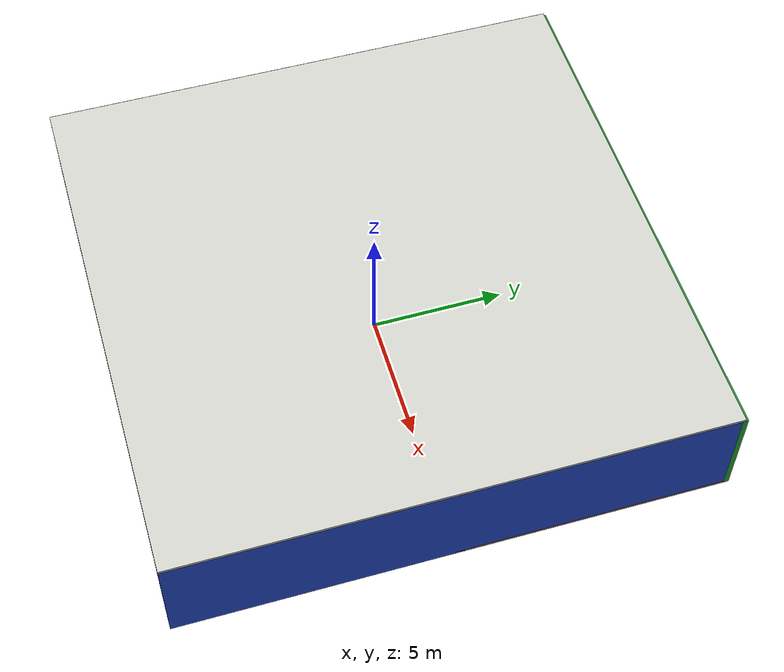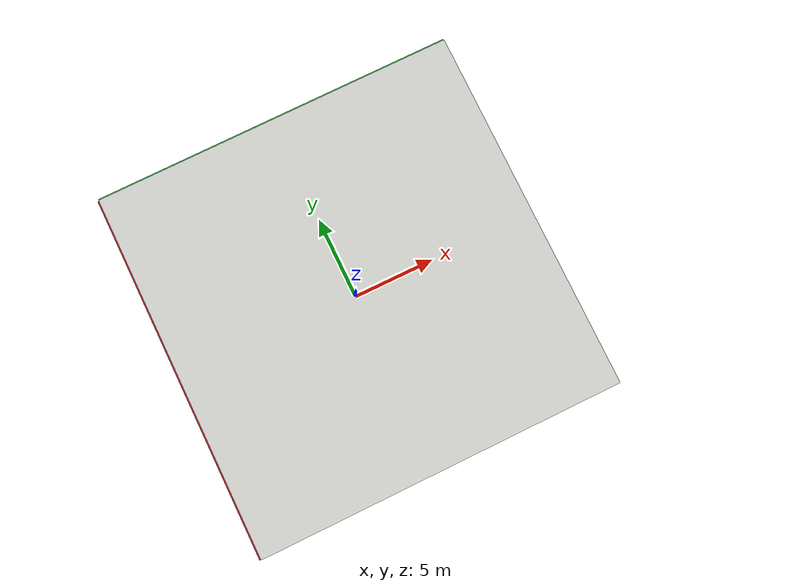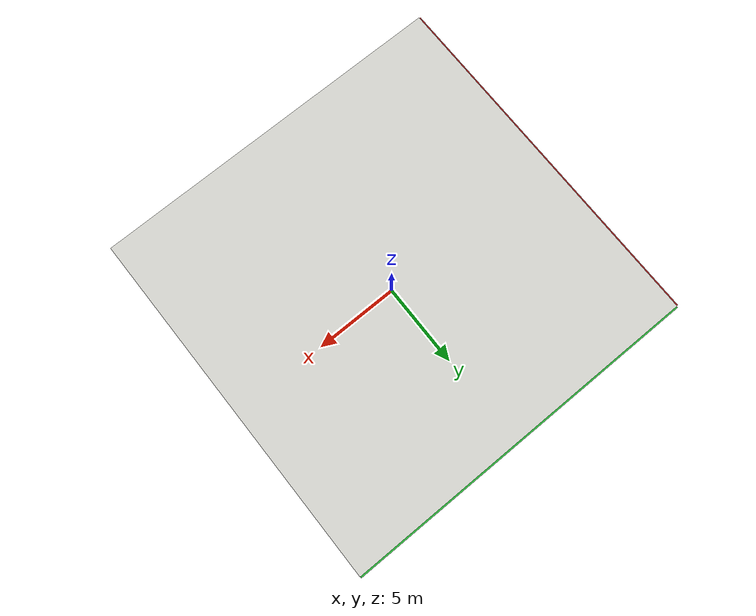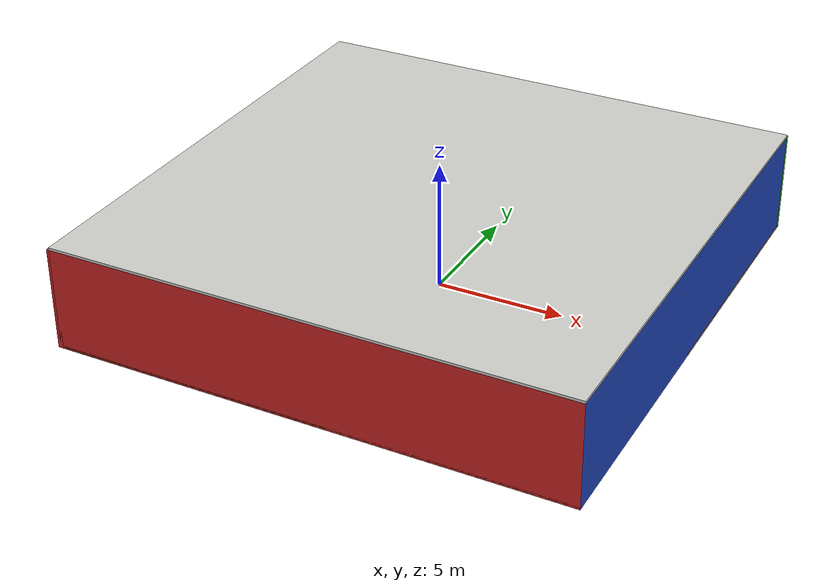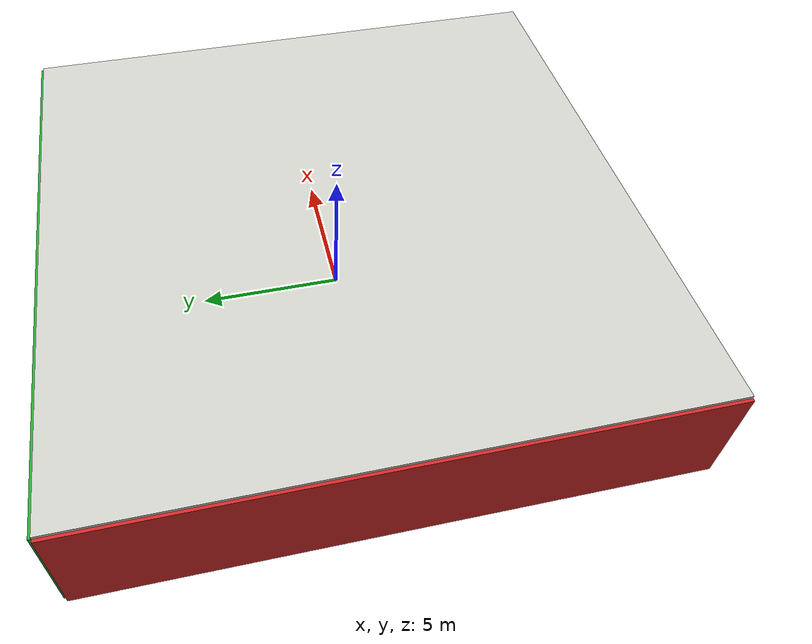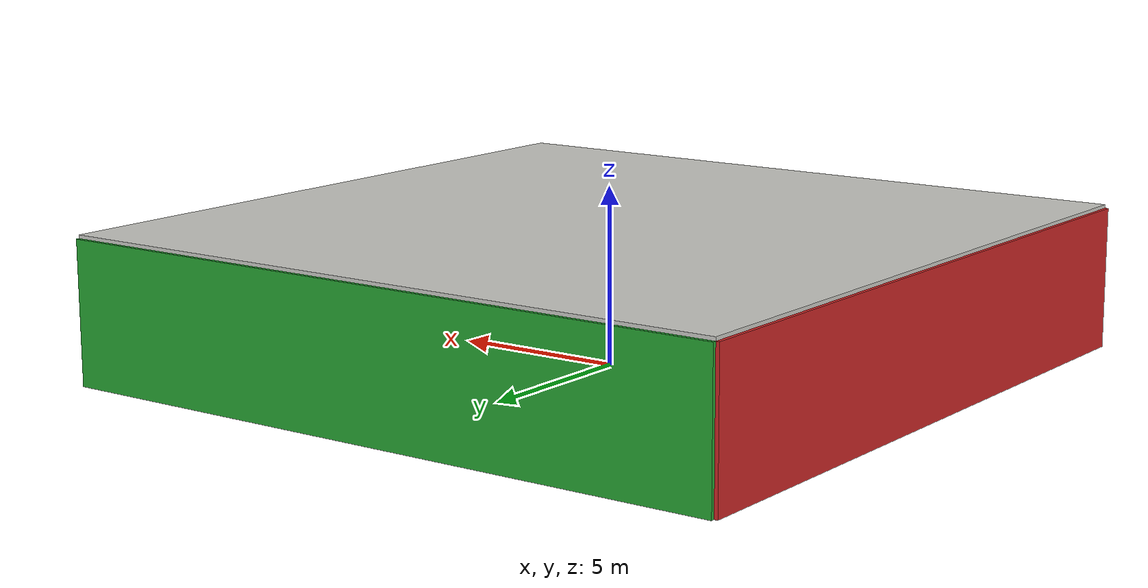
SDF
<sdf version="1.4">
 <world name="default">
  <physics type="ode">
   <max_step_size>0.001</max_step_size>
   <real_time_factor>1</real_time_factor>
   <real_time_update_rate>1000</real_time_update_rate>
   <gravity>0 0 -9.8</gravity>
  </physics>
  <scene><ambient>0.4 0.4 0.4 1</ambient><background>0.7 0.7 0.7 1</background><shadows>1</shadows></scene>
  <model name="Surrounding">
   <static>1</static>
   <link name="Ceiling">
    <collision name="Ceiling_Collision"><geometry><box><size>20 20 0.1</size></box></geometry></collision>
    <visual name="Ceiling_Visual">
     <geometry><box><size>20 20 0.1</size></box></geometry>
     <material>
      <script><uri>file://media/materials/scripts/gazebo.material</uri><name>Gazebo/CeilingTiled</name></script>
     </material>
    </visual>
    <pose>0 0 4.05 0 0 0</pose>
   </link>
   <link name="Wall_South">
    <collision name="Wall_South_Collision">
     <geometry><box><size>20 0 4</size></box></geometry>
     <pose>0 0 2 0 -0 0</pose>
    </collision>
    <visual name="Wall_South_Visual">
     <pose>0 0 2 0 -0 0</pose>
     <geometry><box><size>20 0 4</size></box></geometry>
     <material>
      <script><uri>file://media/materials/scripts/gazebo.material</uri><name>Gazebo/RedGlow</name></script>
     </material>
    </visual>
    <velocity_decay><linear>0</linear><angular>0</angular></velocity_decay>
    <pose>0 -10 0 0 -0 0</pose>
   </link>
   <link name="Wall_East">
    <collision name="Wall_21_Collision">
     <geometry><box><size>20 0 4</size></box></geometry>
     <pose>0 0 2 0 -0 0</pose>
    </collision>
    <visual name="Wall_21_Visual">
     <pose>0 0 2 0 -0 0</pose>
     <geometry><box><size>20 0 4</size></box></geometry>
     <material>
      <script><uri>file://media/materials/scripts/gazebo.material</uri><name>Gazebo/BlueLaser</name></script>
     </material>
    </visual>
    <velocity_decay><linear>0</linear><angular>0</angular></velocity_decay>
    <pose>10 0 0 0 -0 1.5708</pose>
   </link>
   <link name="Wall_North">
    <collision name="Wall_22_Collision">
     <geometry><box><size>20 0.2 4</size></box></geometry>
     <pose>0 0 2 0 -0 0</pose>
    </collision>
    <visual name="Wall_22_Visual">
     <pose>0 0 2 0 -0 0</pose>
     <geometry><box><size>20 0.2 4</size></box></geometry>
     <material>
      <script><uri>file://media/materials/scripts/gazebo.material</uri><name>Gazebo/GreenGlow</name></script>
     </material>
    </visual>
    <velocity_decay><linear>0</linear><angular>0</angular></velocity_decay>
    <pose>0 10 0 0 -0 0</pose>
   </link>
   <link name="Wall_West">
    <collision name="Wall_23_Collision">
     <geometry><box><size>20 0.2 4</size></box></geometry>
     <pose>0 0 2 0 -0 0</pose>
    </collision>
    <visual name="Wall_23_Visual">
     <pose>0 0 2 0 -0 0</pose>
     <geometry><box><size>20 0.2 4</size></box></geometry>
     <material>
      <script><uri>file://media/materials/scripts/gazebo.material</uri><name>Gazebo/Red</name></script>
     </material>
    </visual>
    <velocity_decay><linear>0</linear><angular>0</angular></velocity_decay>
    <pose>-10 0 0 0 0 -1.5708</pose>
   </link>
   <link name="Ground_link">
    <collision name="collision">
     <pose>0 0 .05 0 -0 0</pose>
     <geometry><box><size>20 20 0.1</size></box></geometry>
    </collision>
    <visual name="visual">
     <pose>0 0 .05 0 -0 0</pose>
     <geometry><box><size>20 20 0.1</size></box></geometry>
     <material>
      <script>
       <uri>file://media/materials/scripts/gazebo.material</uri>
       <name>Gazebo/OrangeTransparent</name>
      </script>
     </material>
    </visual>
   </link>
   <static>1</static>
  </model>
  <spherical_coordinates>
   <surface_model>EARTH_WGS84</surface_model>
   <latitude_deg>0</latitude_deg>
   <longitude_deg>0</longitude_deg>
   <elevation>0</elevation>
   <heading_deg>0</heading_deg>
  </spherical_coordinates>
  <light name="lightball_0" type="diffuse">
   <diffuse>0.8 0.8 0.8 1</diffuse>
   <specular>0.2 0.2 0.2 1</specular>
   <attenuation>
    <range>100</range>
    <constant>0.7</constant>
    <linear>0.01</linear>
    <quadratic>0.001</quadratic>
   </attenuation>
   <direction>-0.5 0.1 -0.9</direction>
   <pose>-9.34891689952 1.96879702491 1.36630239621 0 0 0</pose>
  </light>
  <light name="lightball_1" type="diffuse">
   <diffuse>0.8 0.8 0.8 1</diffuse>
   <specular>0.2 0.2 0.2 1</specular>
   <attenuation>
    <range>100</range>
    <constant>0.7</constant>
    <linear>0.01</linear>
    <quadratic>0.001</quadratic>
   </attenuation>
   <direction>-0.5 0.1 -0.9</direction>
   <pose>-8.64686568017 -2.41611712836 1.41122255703 0 0 0</pose>
  </light>
  <light name="lightball_2" type="diffuse">
   <diffuse>0.8 0.8 0.8 1</diffuse>
   <specular>0.2 0.2 0.2 1</specular>
   <attenuation>
    <range>100</range>
    <constant>0.7</constant>
    <linear>0.01</linear>
    <quadratic>0.001</quadratic>
   </attenuation>
   <direction>-0.5 0.1 -0.9</direction>
   <pose>-3.02196445122 9.21918295035 2.79826281859 0 0 0</pose>
  </light>
  <light name="lightball_3" type="diffuse">
   <diffuse>0.8 0.8 0.8 1</diffuse>
   <specular>0.2 0.2 0.2 1</specular>
   <attenuation>
    <range>100</range>
    <constant>0.7</constant>
    <linear>0.01</linear>
    <quadratic>0.001</quadratic>
   </attenuation>
   <direction>-0.5 0.1 -0.9</direction>
   <pose>-5.54785937497 9.57262758138 3.60405434242 0 0 0</pose>
  </light>
  <light name="lightball_4" type="diffuse">
   <diffuse>0.8 0.8 0.8 1</diffuse>
   <specular>0.2 0.2 0.2 1</specular>
   <attenuation>
    <range>100</range>
    <constant>0.7</constant>
    <linear>0.01</linear>
    <quadratic>0.001</quadratic>
   </attenuation>
   <direction>-0.5 0.1 -0.9</direction>
   <pose>-5.9398820516 9.94220392575 2.31580312004 0 0 0</pose>
  </light>
  <light name="lightball_5" type="diffuse">
   <diffuse>0.8 0.8 0.8 1</diffuse>
   <specular>0.2 0.2 0.2 1</specular>
   <attenuation>
    <range>100</range>
    <constant>0.7</constant>
    <linear>0.01</linear>
    <quadratic>0.001</quadratic>
   </attenuation>
   <direction>-0.5 0.1 -0.9</direction>
   <pose>4.58360259419 -9.25324993714 3.26059116302 0 0 0</pose>
  </light>
  <light name="lightball_6" type="diffuse">
   <diffuse>0.8 0.8 0.8 1</diffuse>
   <specular>0.2 0.2 0.2 1</specular>
   <attenuation>
    <range>100</range>
    <constant>0.7</constant>
    <linear>0.01</linear>
    <quadratic>0.001</quadratic>
   </attenuation>
   <direction>-0.5 0.1 -0.9</direction>
   <pose>-3.78575893224 7.16807450242 1.2008038538 0 0 0</pose>
  </light>
  <light name="lightball_7" type="diffuse">
   <diffuse>0.8 0.8 0.8 1</diffuse>
   <specular>0.2 0.2 0.2 1</specular>
   <attenuation>
    <range>100</range>
    <constant>0.7</constant>
    <linear>0.01</linear>
    <quadratic>0.001</quadratic>
   </attenuation>
   <direction>-0.5 0.1 -0.9</direction>
   <pose>-4.51669596706 2.68712887742 2.0578271152 0 0 0</pose>
  </light>
  <light name="lightball_8" type="diffuse">
   <diffuse>0.8 0.8 0.8 1</diffuse>
   <specular>0.2 0.2 0.2 1</specular>
   <attenuation>
    <range>100</range>
    <constant>0.7</constant>
    <linear>0.01</linear>
    <quadratic>0.001</quadratic>
   </attenuation>
   <direction>-0.5 0.1 -0.9</direction>
   <pose>-0.736665633333 -9.42900689404 1.09923140461 0 0 0</pose>
  </light>
  <light name="lightball_9" type="diffuse">
   <diffuse>0.8 0.8 0.8 1</diffuse>
   <specular>0.2 0.2 0.2 1</specular>
   <attenuation>
    <range>100</range>
    <constant>0.7</constant>
    <linear>0.01</linear>
    <quadratic>0.001</quadratic>
   </attenuation>
   <direction>-0.5 0.1 -0.9</direction>
   <pose>-1.61541854248 -7.67597381162 3.4658552951 0 0 0</pose>
  </light>
  <light name="lightball_10" type="diffuse">
   <diffuse>0.8 0.8 0.8 1</diffuse>
   <specular>0.2 0.2 0.2 1</specular>
   <attenuation>
    <range>100</range>
    <constant>0.7</constant>
    <linear>0.01</linear>
    <quadratic>0.001</quadratic>
   </attenuation>
   <direction>-0.5 0.1 -0.9</direction>
   <pose>-2.83019822878 8.85595895413 3.0767141477 0 0 0</pose>
  </light>
  <light name="lightball_11" type="diffuse">
   <diffuse>0.8 0.8 0.8 1</diffuse>
   <specular>0.2 0.2 0.2 1</specular>
   <attenuation>
    <range>100</range>
    <constant>0.7</constant>
    <linear>0.01</linear>
    <quadratic>0.001</quadratic>
   </attenuation>
   <direction>-0.5 0.1 -0.9</direction>
   <pose>9.45886521016 -8.07076739967 0.744737019628 0 0 0</pose>
  </light>
  <light name="lightball_12" type="diffuse">
   <diffuse>0.8 0.8 0.8 1</diffuse>
   <specular>0.2 0.2 0.2 1</specular>
   <attenuation>
    <range>100</range>
    <constant>0.7</constant>
    <linear>0.01</linear>
    <quadratic>0.001</quadratic>
   </attenuation>
   <direction>-0.5 0.1 -0.9</direction>
   <pose>7.87094513986 -7.55269474213 1.75486492622 0 0 0</pose>
  </light>
  <light name="lightball_13" type="diffuse">
   <diffuse>0.8 0.8 0.8 1</diffuse>
   <specular>0.2 0.2 0.2 1</specular>
   <attenuation>
    <range>100</range>
    <constant>0.7</constant>
    <linear>0.01</linear>
    <quadratic>0.001</quadratic>
   </attenuation>
   <direction>-0.5 0.1 -0.9</direction>
   <pose>9.65784947888 -1.91994506569 3.83723637251 0 0 0</pose>
  </light>
  <include><uri>model://cabinet</uri><pose>-5.08625305777 7.2249961794 0 0 0 1.96555388009</pose></include>
  <include><uri>model://cabinet</uri><pose>-1.69669761695 3.760036971 0 0 0 1.895194644</pose></include>
  <include><uri>model://cabinet</uri><pose>1.77019743502 -8.02485983162 0 0 0 2.67924228663</pose></include>
  <include><uri>model://table</uri><pose>4.49203996709 -2.09764604286 0 0 0 2.97920460013</pose></include>
 </world>
</sdf>

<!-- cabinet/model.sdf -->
<sdf version="1.5">
  <model name="cabinet">
    <static>true</static>
    <link name="cabinet_bottom_plate">
      <inertial>
        <pose>0 0 -1 0 0 0</pose>
        <inertia>
          <ixx>2.050000</ixx>
          <ixy>0</ixy>
          <ixz>0</ixz>
          <iyy>2.050000</iyy>
          <iyz>0</iyz>
          <izz>2.050000</izz>
        </inertia>
        <mass>25.000000</mass>
      </inertial>
      <collision name="cabinet_bottom_plate_geom">
        <pose>0 0 0.010000 0 0 0</pose>
        <geometry>
          <box>
            <size>0.450000 0.450000 0.020000</size>
          </box>
        </geometry>
      </collision>
      <visual name="cabinet_bottom_plate_geom_visual">
        <pose>0 0 0.010000 0 0 0</pose>
        <geometry>
          <box>
            <size>0.450000 0.450000 0.020000</size>
          </box>
        </geometry>
        <material>
          <script>
            <uri>model://media/materials/scripts/gazebo.material</uri>
            <name>Gazebo/Wood</name>
          </script>
        </material>
      </visual>
      <collision name="cabinet_bottom_plate_geom_cabinet_back_plate">
        <pose>0.235000 0 0.510000 0 0 0</pose>
        <geometry>
          <box>
            <size>0.020000 0.450000 1.020000</size>
          </box>
        </geometry>
      </collision>
      <visual name="cabinet_bottom_plate_geom_cabinet_back_plate_visual">
        <pose>0.235000 0 0.510000 0 0 0</pose>
        <geometry>
          <box>
            <size>0.020000 0.450000 1.020000</size>
          </box>
        </geometry>
        <material>
          <script>
            <uri>model://media/materials/scripts/gazebo.material</uri>
            <name>Gazebo/Wood</name>
          </script>
        </material>
      </visual>
      <collision name="cabinet_bottom_plate_geom_cabinet_left_plate">
        <pose>0 0.235000 0.510000 0 0 0</pose>
        <geometry>
          <box>
            <size>0.450000 0.020000 1.020000</size>
          </box>
        </geometry>
      </collision>
      <visual name="cabinet_bottom_plate_geom_cabinet_left_plate_visual">
        <pose>0 0.235000 0.510000 0 0 0</pose>
        <geometry>
          <box>
            <size>0.450000 0.020000 1.020000</size>
          </box>
        </geometry>
        <material>
          <script>
            <uri>model://media/materials/scripts/gazebo.material</uri>
            <name>Gazebo/Wood</name>
          </script>
        </material>
      </visual>
      <collision name="cabinet_bottom_plate_geom_cabinet_middle_plate">
        <pose>0 0 0.510000 0 0 0</pose>
        <geometry>
          <box>
            <size>0.450000 0.450000 0.020000</size>
          </box>
        </geometry>
      </collision>
      <visual name="cabinet_bottom_plate_geom_cabinet_middle_plate_visual">
        <pose>0 0 0.510000 0 0 0</pose>
        <geometry>
          <box>
            <size>0.450000 0.450000 0.020000</size>
          </box>
        </geometry>
        <material>
          <script>
            <uri>model://media/materials/scripts/gazebo.material</uri>
            <name>Gazebo/Wood</name>
          </script>
        </material>
      </visual>
      <collision name="cabinet_bottom_plate_geom_cabinet_right_plate">
        <pose>0 -0.235000 0.510000 0 0 0</pose>
        <geometry>
          <box>
            <size>0.450000 0.020000 1.020000</size>
          </box>
        </geometry>
      </collision>
      <visual name="cabinet_bottom_plate_geom_cabinet_right_plate_visual">
        <pose>0 -0.235000 0.510000 0 0 0</pose>
        <geometry>
          <box>
            <size>0.450000 0.020000 1.020000</size>
          </box>
        </geometry>
        <material>
          <script>
            <uri>model://media/materials/scripts/gazebo.material</uri>
            <name>Gazebo/Wood</name>
          </script>
        </material>
      </visual>
      <collision name="cabinet_bottom_plate_geom_cabinet_top_plate">
        <pose>0 0 1.010000 0 0 0</pose>
        <geometry>
          <box>
            <size>0.450000 0.450000 0.020000</size>
          </box>
        </geometry>
      </collision>
      <visual name="cabinet_bottom_plate_geom_cabinet_top_plate_visual">
        <pose>0 0 1.010000 0 0 0</pose>
        <geometry>
          <box>
            <size>0.450000 0.450000 0.020000</size>
          </box>
        </geometry>
        <material>
          <script>
            <uri>model://media/materials/scripts/gazebo.material</uri>
            <name>Gazebo/Wood</name>
          </script>
        </material>
      </visual>
    </link>
  </model>
</sdf>

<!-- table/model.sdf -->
<sdf version="1.5">
  <model name="table">
    <static>true</static>
    <link name="link">
      <collision name="surface">
        <pose>0 0 1.0 0 0 0</pose>
        <geometry>
          <box>
            <size>1.5 0.8 0.03</size>
          </box>
        </geometry>
        <surface>
          <friction>
            <ode>
              <mu>0.6</mu>
              <mu2>0.6</mu2>
            </ode>
          </friction>
        </surface>
      </collision>
      <visual name="visual1">
        <pose>0 0 1.0 0 0 0</pose>
        <geometry>
          <box>
            <size>1.5 0.8 0.03</size>
          </box>
        </geometry>
        <material>
          <script>
            <uri>model://media/materials/scripts/gazebo.material</uri>
            <name>Gazebo/Wood</name>
          </script>
        </material>
      </visual>
      <collision name="front_left_leg">
        <pose>0.68 0.38 0.5 0 0 0</pose>
        <geometry>
          <cylinder>
            <radius>0.02</radius>
            <length>1.0</length>
          </cylinder>
        </geometry>
      </collision>
      <visual name="front_left_leg">
        <pose>0.68 0.38 0.5 0 0 0</pose>
        <geometry>
          <cylinder>
            <radius>0.02</radius>
            <length>1.0</length>
          </cylinder>
        </geometry>
        <material>
          <script>
            <uri>model://media/materials/scripts/gazebo.material</uri>
            <name>Gazebo/Grey</name>
          </script>
        </material>
      </visual>
      <collision name="front_right_leg">
        <pose>0.68 -0.38 0.5 0 0 0</pose>
        <geometry>
          <cylinder>
            <radius>0.02</radius>
            <length>1.0</length>
          </cylinder>
        </geometry>
      </collision>
      <visual name="front_right_leg">
        <pose>0.68 -0.38 0.5 0 0 0</pose>
        <geometry>
          <cylinder>
            <radius>0.02</radius>
            <length>1.0</length>
          </cylinder>
        </geometry>
        <material>
          <script>
            <uri>model://media/materials/scripts/gazebo.material</uri>
            <name>Gazebo/Grey</name>
          </script>
        </material>
      </visual>
      <collision name="back_right_leg">
        <pose>-0.68 -0.38 0.5 0 0 0</pose>
        <geometry>
          <cylinder>
            <radius>0.02</radius>
            <length>1.0</length>
          </cylinder>
        </geometry>
      </collision>
      <visual name="back_right_leg">
        <pose>-0.68 -0.38 0.5 0 0 0</pose>
        <geometry>
          <cylinder>
            <radius>0.02</radius>
            <length>1.0</length>
          </cylinder>
        </geometry>
        <material>
          <script>
            <uri>model://media/materials/scripts/gazebo.material</uri>
            <name>Gazebo/Grey</name>
          </script>
        </material>
      </visual>
      <collision name="back_left_leg">
        <pose>-0.68 0.38 0.5 0 0 0</pose>
        <geometry>
          <cylinder>
            <radius>0.02</radius>
            <length>1.0</length>
          </cylinder>
        </geometry>
      </collision>
      <visual name="back_left_leg">
        <pose>-0.68 0.38 0.5 0 0 0</pose>
        <geometry>
          <cylinder>
            <radius>0.02</radius>
            <length>1.0</length>
          </cylinder>
        </geometry>
        <material>
          <script>
            <uri>model://media/materials/scripts/gazebo.material</uri>
            <name>Gazebo/Grey</name>
          </script>
        </material>
      </visual>
    </link>
  </model>
</sdf>
